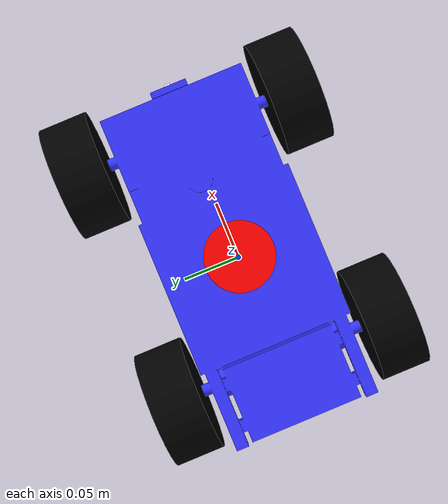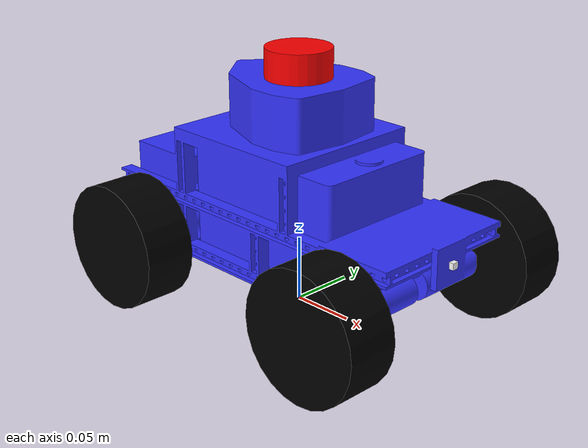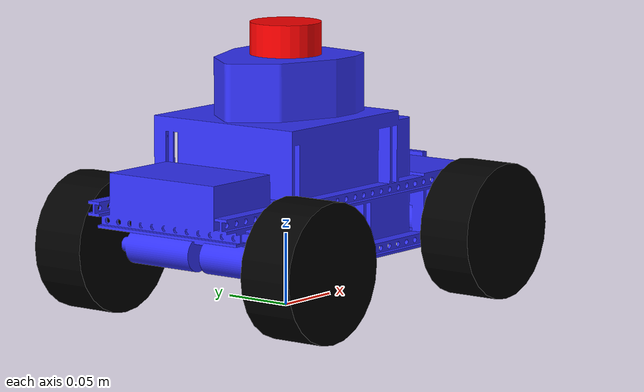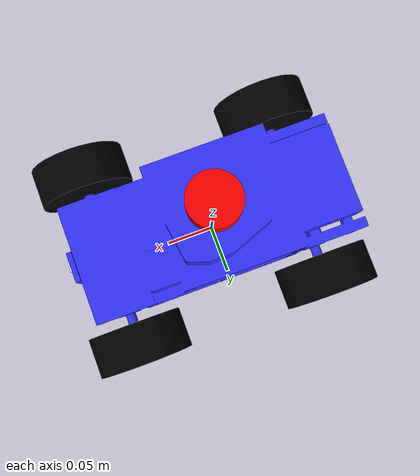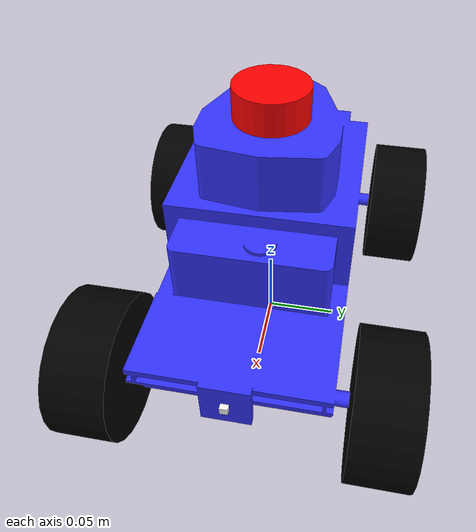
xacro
<?xml version="1.0"?>
<robot xmlns:xacro="http://www.ros.org/wiki/xacro"  name="robot">

    <xacro:arg name="use_ros2_control" default="false"/>
    <xacro:arg name="sim_mode" default="false"/>

    <xacro:include filename="config.xacro" />
    <xacro:include filename="common.xacro" />
    <xacro:include filename="robot.core.xacro" />
    <xacro:include filename="lidar.xacro" />
    <xacro:include filename="camera.xacro" />
    <xacro:include filename="imu.xacro" />

    <xacro:include filename="gazebo.xacro" />

</robot>

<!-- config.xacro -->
<robot xmlns:xacro="http://www.ros.org/wiki/xacro" >

  <xacro:property name="model_path" value="file://$(find laika_description)/laika.stl"/>
  <!--xacro:property name="model_path" value="package://laika_description/laika.stl"/-->

  <!-- Robot Dimensions -->

  <xacro:property name="initial_z_pose" value="0.106"/>
  <xacro:property name="chassis_length" value="0.280"/>
  <xacro:property name="chassis_width" value="0.140"/>
  <xacro:property name="chassis_height" value="0.140"/>
  <xacro:property name="chassis_mass" value="1.850"/>
  <xacro:property name="chassis_offset_z" value="${chassis_height/2}"/>
  <!--xacro:property name="z_pose" value="0.106"/-->

  <xacro:property name="wheel_radius" value="0.048"/>
  <xacro:property name="wheel_thickness" value="0.04"/>
  <xacro:property name="wheel_mass" value="0.150"/>
  <xacro:property name="wheel_base" value="0.160"/>
  <xacro:property name="wheel_front_offset_x" value="0.110"/>
  <xacro:property name="wheel_back_offset_x" value="-0.090"/>
  <xacro:property name="wheel_right_offset_y" value="-0.090"/>
  <xacro:property name="wheel_left_offset_y" value="0.090"/>
  <!--xacro:property name="wheel_all_offset_z" value="-0.010"/-->
  <xacro:property name="wheel_all_offset_z" value="0.048"/>

</robot>

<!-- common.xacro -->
<robot xmlns:xacro="http://www.ros.org/wiki/xacro" >

    <!-- Standard colours in Gazebo -->

    <material name="white">
        <color rgba="1 1 1 1" />
    </material>

    <material name="orange">
        <color rgba="1 0.3 0.1 1"/>
    </material>

    <material name="blue">
        <color rgba="0.2 0.2 1 1"/>
    </material>

    <material name="black">
        <color rgba="0 0 0 1"/>
    </material>

    <material name="red">
        <color rgba="1 0 0 1"/>
    </material>

    <material name="grey">
      	<color rgba="0.2 0.2 0.2 1"/>
    </material>

    <material name="lightgrey">
        <color rgba="0.4 0.4 0.4 1"/>
    </material>

    <!-- Constants -->

    <!--xacro:property name="pi" value="3.14359"/-->

    <!-- Inertia macro calculations -->

    <xacro:macro name="inertial_sphere" params="mass radius *origin">
        <inertial>
            <xacro:insert_block name="origin"/>
            <mass value="${mass}" />
            <inertia ixx="${(2/5) * mass * (radius*radius)}" ixy="0.0" ixz="0.0"
                    iyy="${(2/5) * mass * (radius*radius)}" iyz="0.0"
                    izz="${(2/5) * mass * (radius*radius)}" />
        </inertial>
    </xacro:macro>

    <xacro:macro name="inertial_box" params="mass x y z *origin">
        <inertial>
            <xacro:insert_block name="origin"/>
            <mass value="${mass}" />
            <inertia ixx="${(1/12) * mass * (y*y+z*z)}" ixy="0.0" ixz="0.0"
                    iyy="${(1/12) * mass * (x*x+z*z)}" iyz="0.0"
                    izz="${(1/12) * mass * (x*x+y*y)}" />
        </inertial>
    </xacro:macro>

    <xacro:macro name="inertial_cylinder" params="mass length radius *origin">
        <inertial>
            <xacro:insert_block name="origin"/>
            <mass value="${mass}" />
            <inertia ixx="${(1/12) * mass * (3*radius*radius + length*length)}" ixy="0.0" ixz="0.0"
                    iyy="${(1/12) * mass * (3*radius*radius + length*length)}" iyz="0.0"
                    izz="${(1/2) * mass * (radius*radius)}" />
        </inertial>
    </xacro:macro>

</robot>

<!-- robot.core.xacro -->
<robot xmlns:xacro="http://ros.org/wiki/xacro">

  <!-- Base Link and Footprint Link-->

  <link name="base_link"></link>

  <joint name="base_footprint_joint" type="fixed">
    <parent link="base_link"/>
    <child link="base_footprint"/>
    <origin xyz="0 0 0" rpy="0 0 0"/>
  </joint>

  <link name="base_footprint"></link>

  <!-- Chassis Link -->

  <link name="chassis_link">
    <visual>
      <geometry>
        <mesh filename="${model_path}" scale="0.001 0.001 0.001"/>
      </geometry>
        <origin rpy="0 0 0" xyz="0 0 0"/>
      <material name="blue">
      </material>
    </visual>
    <collision>
      <geometry>
        <box size="${chassis_length} ${chassis_width} ${chassis_height}"/>
      </geometry>
    </collision>
    <xacro:inertial_box mass="${chassis_mass}" x="${chassis_length}" y="${chassis_width}" z="${chassis_height}">
      <origin xyz="0 0 0" rpy="0 0 0"/>
    </xacro:inertial_box>
  </link>

  <joint name="chassis_joint" type="fixed">
    <parent link="base_link"/>
    <child link="chassis_link"/>
    <origin xyz="0 0 ${initial_z_pose}"/>
  </joint>

  <!-- Right Front Wheel and Joint -->

  <link name="right_front_wheel">
    <visual>
      <geometry>
        <cylinder length="${wheel_thickness}" radius="${wheel_radius}"/>
      </geometry>
      <material name="black" />
    </visual>
    <collision>
      <geometry>
        <sphere radius="${wheel_radius}"/>
      </geometry>
    </collision>
    <xacro:inertial_cylinder mass="${wheel_mass}" length="${wheel_thickness}" radius="${wheel_radius}">
      <origin xyz="0 0 0" rpy="0 0 0"/>
    </xacro:inertial_cylinder>
  </link>

  <joint name="base_to_right_front_wheel" type="continuous">
    <parent link="base_link"/>
    <child link="right_front_wheel"/>
    <origin xyz="${wheel_front_offset_x} ${wheel_right_offset_y} ${wheel_all_offset_z}" rpy="-${pi/2} 0 0" />
    <axis xyz="0 0 1"/>
  </joint>

  <!-- Right Back Wheel and Joint -->

  <link name="right_back_wheel">
    <visual>
      <geometry>
        <cylinder length="${wheel_thickness}" radius="${wheel_radius}"/>
      </geometry>
      <material name="black" />
    </visual>
    <collision>
      <geometry>
        <sphere radius="${wheel_radius}"/>
      </geometry>
    </collision>
    <xacro:inertial_cylinder mass="${wheel_mass}" length="${wheel_thickness}" radius="${wheel_radius}">
      <origin xyz="0 0 0" rpy="0 0 0"/>
    </xacro:inertial_cylinder>
  </link>

  <joint name="base_to_right_back_wheel" type="continuous">
    <parent link="base_link"/>
    <child link="right_back_wheel"/>
    <origin xyz="${wheel_back_offset_x} ${wheel_right_offset_y} ${wheel_all_offset_z}" rpy="-${pi/2} 0 0"/>
    <axis xyz="0 0 1"/>
  </joint>

  <!-- Left Front Wheel and Joint -->

  <link name="left_front_wheel">
    <visual>
      <geometry>
        <cylinder length="${wheel_thickness}" radius="${wheel_radius}"/>
      </geometry>
      <material name="black" />
    </visual>
    <collision>
      <geometry>
        <sphere radius="${wheel_radius}"/>
      </geometry>
    </collision>
    <xacro:inertial_cylinder mass="${wheel_mass}" length="${wheel_thickness}" radius="${wheel_radius}">
      <origin xyz="0 0 0" rpy="0 0 0"/>
    </xacro:inertial_cylinder>
  </link>

  <joint name="base_to_left_front_wheel" type="continuous">
    <parent link="base_link"/>
    <child link="left_front_wheel"/>
    <origin xyz="${wheel_front_offset_x} ${wheel_left_offset_y} ${wheel_all_offset_z}" rpy="-${pi/2} 0 0"/>
    <axis xyz="0 0 1"/>
  </joint>

  <!-- Left Back Wheel and Joint -->

  <link name="left_back_wheel">
    <visual>
      <geometry>
        <cylinder length="${wheel_thickness}" radius="${wheel_radius}"/>
      </geometry>
      <material name="black" />
    </visual>
    <collision>
      <geometry>
        <sphere radius="${wheel_radius}"/>
      </geometry>
    </collision>
    <xacro:inertial_cylinder mass="${wheel_mass}" length="${wheel_thickness}" radius="${wheel_radius}">
      <origin xyz="0 0 0" rpy="0 0 0"/>
    </xacro:inertial_cylinder>
  </link>

  <joint name="base_to_left_back_wheel" type="continuous">
    <parent link="base_link"/>
    <child link="left_back_wheel"/>
    <origin xyz="${wheel_back_offset_x} ${wheel_left_offset_y} ${wheel_all_offset_z}" rpy="-${pi/2} 0 0"/>
    <axis xyz="0 0 1"/>
  </joint>

</robot>

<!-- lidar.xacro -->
<robot xmlns:xacro="http://www.ros.org/wiki/xacro" >

<!-- Lidar Link xacro file -->

    <link name="laser_frame">
        <visual>
            <geometry>
                <cylinder radius="0.025" length="0.025"/>
            </geometry>
            <material name="red"/>
        </visual>
        <collision>
            <geometry>
                <cylinder radius="0.025" length="0.025"/>
            </geometry>
        </collision>
        <xacro:inertial_cylinder mass="0.05" length="0.025" radius="0.025">
            <origin xyz="0 0 0" rpy="0 0 0"/>
        </xacro:inertial_cylinder>
    </link>

    <joint name="laser_joint" type="fixed">
        <parent link="base_link"/>
        <child link="laser_frame"/>
        <origin xyz="0 0 0.186" rpy="0 0 0"/>
    </joint>

</robot>

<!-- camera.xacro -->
<robot xmlns:xacro="http://www.ros.org/wiki/xacro" >

<!-- Camera Link xacro file -->

    <link name="camera_link">
        <visual>
            <geometry>
                <!--cylinder radius="0.005" length="0.003"/-->
                <box size="0.005 0.005 0.005"/>
            </geometry>
            <material name="white"/>
        </visual>
    </link>

    <joint name="camera_joint" type="fixed">
        <parent link="base_link"/>
        <child link="camera_link"/>
        <origin xyz="0.146 0 0.076" rpy="0 0 0"/>
    </joint>

    <joint name="camera_optical_joint" type="fixed">
        <parent link="camera_link"/>
        <child link="camera_link_optical"/>
        <origin xyz="0 0 0" rpy="${-pi/2} 0 ${-pi/2}"/>
    </joint>

    <link name="camera_link_optical"></link>

</robot>

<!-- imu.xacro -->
<robot xmlns:xacro="http://www.ros.org/wiki/xacro" >

<!-- Lidar Link xacro file -->

    <link name="imu_frame" />

    <joint name="imu_joint" type="fixed">
        <parent link="base_link"/>
        <child link="imu_frame"/>
    </joint>

</robot>
